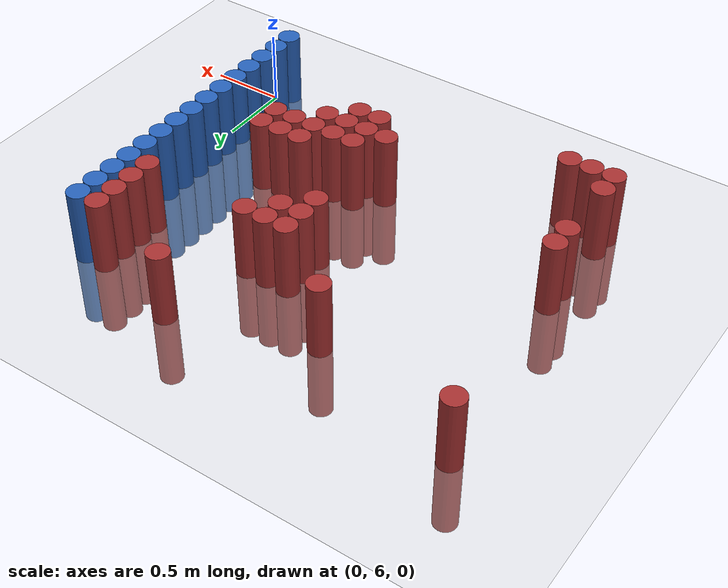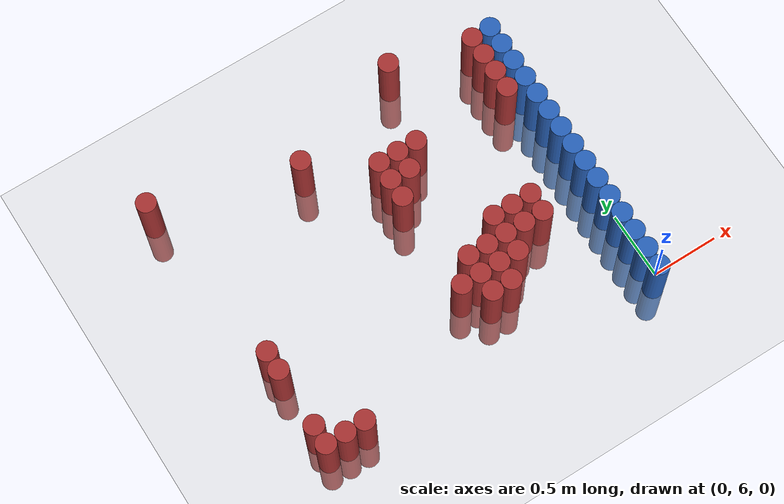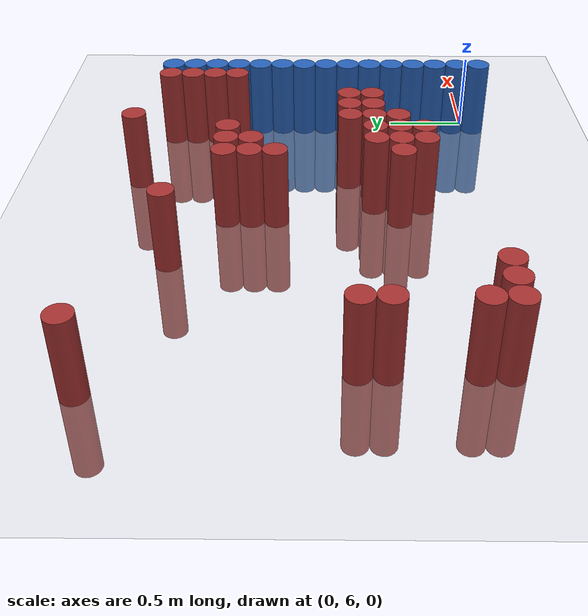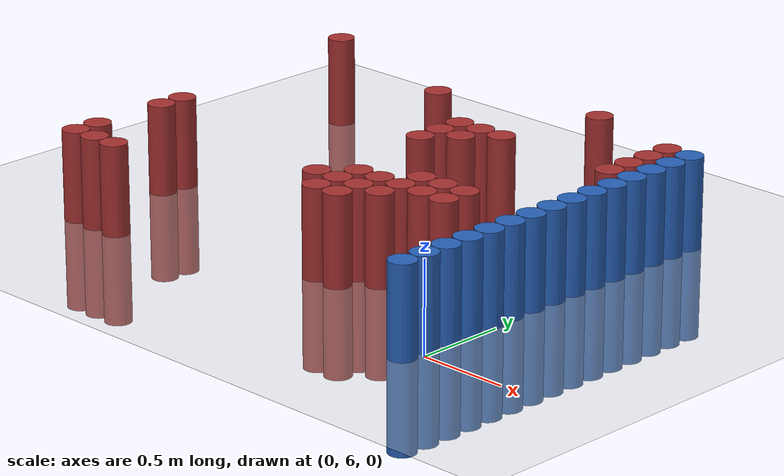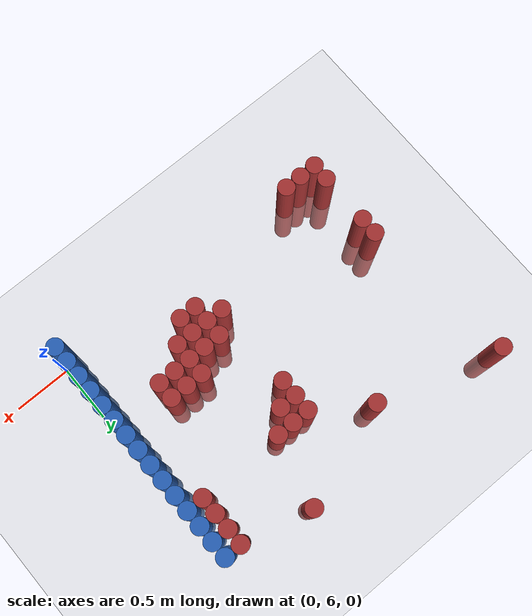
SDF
<sdf version="1.6">
 <world name="default">
  <model name="ground_plane">
   <static>1</static>
   <link name="link">
    <collision name="collision">
     <geometry><plane><normal>0 0 1</normal><size>100 100</size></plane></geometry>
     <surface><friction><ode><mu>100</mu><mu2>50</mu2></ode></friction></surface>
    </collision>
    <visual name="visual">
     <cast_shadows>0</cast_shadows>
     <geometry><plane><normal>0 0 1</normal><size>100 100</size></plane></geometry>
     <material>
      <script><uri>file://media/materials/scripts/gazebo.material</uri><name>Gazebo/Grey</name></script>
     </material>
    </visual>
   </link>
  </model>
  <model name="unit_cylinder_219">
   <static>1</static>
   <pose>-2.775000 8.175000 0.000000 0.000000 0.000000 0.000000</pose>
   <link name="link">
    <inertial>
     <mass>1</mass>
     <inertia><ixx>0.145833</ixx><ixy>0</ixy><ixz>0</ixz><iyy>0.145833</iyy><iyz>0</iyz><izz>0.125</izz></inertia>
    </inertial>
    <collision name="collision">
     <geometry><cylinder><radius>0.075000</radius><length>1</length></cylinder></geometry>
    </collision>
    <visual name="visual">
     <geometry><cylinder><radius>0.075000</radius><length>1</length></cylinder></geometry>
     <material>
      <ambient>0.648000 0.192000 0.192000 1</ambient>
      <diffuse>0.648000 0.192000 0.192000 1</diffuse>
     </material>
     <material>
      <script><name>Gazebo/Grey</name><uri>file://media/materials/scripts/gazebo.material</uri></script>
     </material>
    </visual>
   </link>
  </model>
  <model name="unit_cylinder_225">
   <static>1</static>
   <pose>-2.625000 6.075000 0.000000 0.000000 0.000000 0.000000</pose>
   <link name="link">
    <inertial>
     <mass>1</mass>
     <inertia><ixx>0.145833</ixx><ixy>0</ixy><ixz>0</ixz><iyy>0.145833</iyy><iyz>0</iyz><izz>0.125</izz></inertia>
    </inertial>
    <collision name="collision">
     <geometry><cylinder><radius>0.075000</radius><length>1</length></cylinder></geometry>
    </collision>
    <visual name="visual">
     <geometry><cylinder><radius>0.075000</radius><length>1</length></cylinder></geometry>
     <material>
      <ambient>0.648000 0.192000 0.192000 1</ambient>
      <diffuse>0.648000 0.192000 0.192000 1</diffuse>
     </material>
     <material>
      <script><name>Gazebo/Grey</name><uri>file://media/materials/scripts/gazebo.material</uri></script>
     </material>
    </visual>
   </link>
  </model>
  <model name="unit_cylinder_226">
   <static>1</static>
   <pose>-2.625000 6.225000 0.000000 0.000000 0.000000 0.000000</pose>
   <link name="link">
    <inertial>
     <mass>1</mass>
     <inertia><ixx>0.145833</ixx><ixy>0</ixy><ixz>0</ixz><iyy>0.145833</iyy><iyz>0</iyz><izz>0.125</izz></inertia>
    </inertial>
    <collision name="collision">
     <geometry><cylinder><radius>0.075000</radius><length>1</length></cylinder></geometry>
    </collision>
    <visual name="visual">
     <geometry><cylinder><radius>0.075000</radius><length>1</length></cylinder></geometry>
     <material>
      <ambient>0.648000 0.192000 0.192000 1</ambient>
      <diffuse>0.648000 0.192000 0.192000 1</diffuse>
     </material>
     <material>
      <script><name>Gazebo/Grey</name><uri>file://media/materials/scripts/gazebo.material</uri></script>
     </material>
    </visual>
   </link>
  </model>
  <model name="unit_cylinder_227">
   <static>1</static>
   <pose>-2.625000 6.675000 0.000000 0.000000 0.000000 0.000000</pose>
   <link name="link">
    <inertial>
     <mass>1</mass>
     <inertia><ixx>0.145833</ixx><ixy>0</ixy><ixz>0</ixz><iyy>0.145833</iyy><iyz>0</iyz><izz>0.125</izz></inertia>
    </inertial>
    <collision name="collision">
     <geometry><cylinder><radius>0.075000</radius><length>1</length></cylinder></geometry>
    </collision>
    <visual name="visual">
     <geometry><cylinder><radius>0.075000</radius><length>1</length></cylinder></geometry>
     <material>
      <ambient>0.648000 0.192000 0.192000 1</ambient>
      <diffuse>0.648000 0.192000 0.192000 1</diffuse>
     </material>
     <material>
      <script><name>Gazebo/Grey</name><uri>file://media/materials/scripts/gazebo.material</uri></script>
     </material>
    </visual>
   </link>
  </model>
  <model name="unit_cylinder_228">
   <static>1</static>
   <pose>-2.625000 6.825000 0.000000 0.000000 0.000000 0.000000</pose>
   <link name="link">
    <inertial>
     <mass>1</mass>
     <inertia><ixx>0.145833</ixx><ixy>0</ixy><ixz>0</ixz><iyy>0.145833</iyy><iyz>0</iyz><izz>0.125</izz></inertia>
    </inertial>
    <collision name="collision">
     <geometry><cylinder><radius>0.075000</radius><length>1</length></cylinder></geometry>
    </collision>
    <visual name="visual">
     <geometry><cylinder><radius>0.075000</radius><length>1</length></cylinder></geometry>
     <material>
      <ambient>0.648000 0.192000 0.192000 1</ambient>
      <diffuse>0.648000 0.192000 0.192000 1</diffuse>
     </material>
     <material>
      <script><name>Gazebo/Grey</name><uri>file://media/materials/scripts/gazebo.material</uri></script>
     </material>
    </visual>
   </link>
  </model>
  <model name="unit_cylinder_235">
   <static>1</static>
   <pose>-2.475000 6.075000 0.000000 0.000000 0.000000 0.000000</pose>
   <link name="link">
    <inertial>
     <mass>1</mass>
     <inertia><ixx>0.145833</ixx><ixy>0</ixy><ixz>0</ixz><iyy>0.145833</iyy><iyz>0</iyz><izz>0.125</izz></inertia>
    </inertial>
    <collision name="collision">
     <geometry><cylinder><radius>0.075000</radius><length>1</length></cylinder></geometry>
    </collision>
    <visual name="visual">
     <geometry><cylinder><radius>0.075000</radius><length>1</length></cylinder></geometry>
     <material>
      <ambient>0.648000 0.192000 0.192000 1</ambient>
      <diffuse>0.648000 0.192000 0.192000 1</diffuse>
     </material>
     <material>
      <script><name>Gazebo/Grey</name><uri>file://media/materials/scripts/gazebo.material</uri></script>
     </material>
    </visual>
   </link>
  </model>
  <model name="unit_cylinder_236">
   <static>1</static>
   <pose>-2.325000 6.075000 0.000000 0.000000 0.000000 0.000000</pose>
   <link name="link">
    <inertial>
     <mass>1</mass>
     <inertia><ixx>0.145833</ixx><ixy>0</ixy><ixz>0</ixz><iyy>0.145833</iyy><iyz>0</iyz><izz>0.125</izz></inertia>
    </inertial>
    <collision name="collision">
     <geometry><cylinder><radius>0.075000</radius><length>1</length></cylinder></geometry>
    </collision>
    <visual name="visual">
     <geometry><cylinder><radius>0.075000</radius><length>1</length></cylinder></geometry>
     <material>
      <ambient>0.648000 0.192000 0.192000 1</ambient>
      <diffuse>0.648000 0.192000 0.192000 1</diffuse>
     </material>
     <material>
      <script><name>Gazebo/Grey</name><uri>file://media/materials/scripts/gazebo.material</uri></script>
     </material>
    </visual>
   </link>
  </model>
  <model name="unit_cylinder_248">
   <static>1</static>
   <pose>-1.725000 7.875000 0.000000 0.000000 0.000000 0.000000</pose>
   <link name="link">
    <inertial>
     <mass>1</mass>
     <inertia><ixx>0.145833</ixx><ixy>0</ixy><ixz>0</ixz><iyy>0.145833</iyy><iyz>0</iyz><izz>0.125</izz></inertia>
    </inertial>
    <collision name="collision">
     <geometry><cylinder><radius>0.075000</radius><length>1</length></cylinder></geometry>
    </collision>
    <visual name="visual">
     <geometry><cylinder><radius>0.075000</radius><length>1</length></cylinder></geometry>
     <material>
      <ambient>0.648000 0.192000 0.192000 1</ambient>
      <diffuse>0.648000 0.192000 0.192000 1</diffuse>
     </material>
     <material>
      <script><name>Gazebo/Grey</name><uri>file://media/materials/scripts/gazebo.material</uri></script>
     </material>
    </visual>
   </link>
  </model>
  <model name="unit_cylinder_257">
   <static>1</static>
   <pose>-1.275000 6.525000 0.000000 0.000000 0.000000 0.000000</pose>
   <link name="link">
    <inertial>
     <mass>1</mass>
     <inertia><ixx>0.145833</ixx><ixy>0</ixy><ixz>0</ixz><iyy>0.145833</iyy><iyz>0</iyz><izz>0.125</izz></inertia>
    </inertial>
    <collision name="collision">
     <geometry><cylinder><radius>0.075000</radius><length>1</length></cylinder></geometry>
    </collision>
    <visual name="visual">
     <geometry><cylinder><radius>0.075000</radius><length>1</length></cylinder></geometry>
     <material>
      <ambient>0.648000 0.192000 0.192000 1</ambient>
      <diffuse>0.648000 0.192000 0.192000 1</diffuse>
     </material>
     <material>
      <script><name>Gazebo/Grey</name><uri>file://media/materials/scripts/gazebo.material</uri></script>
     </material>
    </visual>
   </link>
  </model>
  <model name="unit_cylinder_258">
   <static>1</static>
   <pose>-1.275000 7.275000 0.000000 0.000000 0.000000 0.000000</pose>
   <link name="link">
    <inertial>
     <mass>1</mass>
     <inertia><ixx>0.145833</ixx><ixy>0</ixy><ixz>0</ixz><iyy>0.145833</iyy><iyz>0</iyz><izz>0.125</izz></inertia>
    </inertial>
    <collision name="collision">
     <geometry><cylinder><radius>0.075000</radius><length>1</length></cylinder></geometry>
    </collision>
    <visual name="visual">
     <geometry><cylinder><radius>0.075000</radius><length>1</length></cylinder></geometry>
     <material>
      <ambient>0.648000 0.192000 0.192000 1</ambient>
      <diffuse>0.648000 0.192000 0.192000 1</diffuse>
     </material>
     <material>
      <script><name>Gazebo/Grey</name><uri>file://media/materials/scripts/gazebo.material</uri></script>
     </material>
    </visual>
   </link>
  </model>
  <model name="unit_cylinder_259">
   <static>1</static>
   <pose>-1.275000 7.425000 0.000000 0.000000 0.000000 0.000000</pose>
   <link name="link">
    <inertial>
     <mass>1</mass>
     <inertia><ixx>0.145833</ixx><ixy>0</ixy><ixz>0</ixz><iyy>0.145833</iyy><iyz>0</iyz><izz>0.125</izz></inertia>
    </inertial>
    <collision name="collision">
     <geometry><cylinder><radius>0.075000</radius><length>1</length></cylinder></geometry>
    </collision>
    <visual name="visual">
     <geometry><cylinder><radius>0.075000</radius><length>1</length></cylinder></geometry>
     <material>
      <ambient>0.648000 0.192000 0.192000 1</ambient>
      <diffuse>0.648000 0.192000 0.192000 1</diffuse>
     </material>
     <material>
      <script><name>Gazebo/Grey</name><uri>file://media/materials/scripts/gazebo.material</uri></script>
     </material>
    </visual>
   </link>
  </model>
  <model name="unit_cylinder_260">
   <static>1</static>
   <pose>-1.275000 7.575000 0.000000 0.000000 0.000000 0.000000</pose>
   <link name="link">
    <inertial>
     <mass>1</mass>
     <inertia><ixx>0.145833</ixx><ixy>0</ixy><ixz>0</ixz><iyy>0.145833</iyy><iyz>0</iyz><izz>0.125</izz></inertia>
    </inertial>
    <collision name="collision">
     <geometry><cylinder><radius>0.075000</radius><length>1</length></cylinder></geometry>
    </collision>
    <visual name="visual">
     <geometry><cylinder><radius>0.075000</radius><length>1</length></cylinder></geometry>
     <material>
      <ambient>0.648000 0.192000 0.192000 1</ambient>
      <diffuse>0.648000 0.192000 0.192000 1</diffuse>
     </material>
     <material>
      <script><name>Gazebo/Grey</name><uri>file://media/materials/scripts/gazebo.material</uri></script>
     </material>
    </visual>
   </link>
  </model>
  <model name="unit_cylinder_261">
   <static>1</static>
   <pose>-1.125000 6.375000 0.000000 0.000000 0.000000 0.000000</pose>
   <link name="link">
    <inertial>
     <mass>1</mass>
     <inertia><ixx>0.145833</ixx><ixy>0</ixy><ixz>0</ixz><iyy>0.145833</iyy><iyz>0</iyz><izz>0.125</izz></inertia>
    </inertial>
    <collision name="collision">
     <geometry><cylinder><radius>0.075000</radius><length>1</length></cylinder></geometry>
    </collision>
    <visual name="visual">
     <geometry><cylinder><radius>0.075000</radius><length>1</length></cylinder></geometry>
     <material>
      <ambient>0.648000 0.192000 0.192000 1</ambient>
      <diffuse>0.648000 0.192000 0.192000 1</diffuse>
     </material>
     <material>
      <script><name>Gazebo/Grey</name><uri>file://media/materials/scripts/gazebo.material</uri></script>
     </material>
    </visual>
   </link>
  </model>
  <model name="unit_cylinder_262">
   <static>1</static>
   <pose>-1.125000 6.525000 0.000000 0.000000 0.000000 0.000000</pose>
   <link name="link">
    <inertial>
     <mass>1</mass>
     <inertia><ixx>0.145833</ixx><ixy>0</ixy><ixz>0</ixz><iyy>0.145833</iyy><iyz>0</iyz><izz>0.125</izz></inertia>
    </inertial>
    <collision name="collision">
     <geometry><cylinder><radius>0.075000</radius><length>1</length></cylinder></geometry>
    </collision>
    <visual name="visual">
     <geometry><cylinder><radius>0.075000</radius><length>1</length></cylinder></geometry>
     <material>
      <ambient>0.648000 0.192000 0.192000 1</ambient>
      <diffuse>0.648000 0.192000 0.192000 1</diffuse>
     </material>
     <material>
      <script><name>Gazebo/Grey</name><uri>file://media/materials/scripts/gazebo.material</uri></script>
     </material>
    </visual>
   </link>
  </model>
  <model name="unit_cylinder_263">
   <static>1</static>
   <pose>-1.125000 6.675000 0.000000 0.000000 0.000000 0.000000</pose>
   <link name="link">
    <inertial>
     <mass>1</mass>
     <inertia><ixx>0.145833</ixx><ixy>0</ixy><ixz>0</ixz><iyy>0.145833</iyy><iyz>0</iyz><izz>0.125</izz></inertia>
    </inertial>
    <collision name="collision">
     <geometry><cylinder><radius>0.075000</radius><length>1</length></cylinder></geometry>
    </collision>
    <visual name="visual">
     <geometry><cylinder><radius>0.075000</radius><length>1</length></cylinder></geometry>
     <material>
      <ambient>0.648000 0.192000 0.192000 1</ambient>
      <diffuse>0.648000 0.192000 0.192000 1</diffuse>
     </material>
     <material>
      <script><name>Gazebo/Grey</name><uri>file://media/materials/scripts/gazebo.material</uri></script>
     </material>
    </visual>
   </link>
  </model>
  <model name="unit_cylinder_264">
   <static>1</static>
   <pose>-1.125000 7.425000 0.000000 0.000000 0.000000 0.000000</pose>
   <link name="link">
    <inertial>
     <mass>1</mass>
     <inertia><ixx>0.145833</ixx><ixy>0</ixy><ixz>0</ixz><iyy>0.145833</iyy><iyz>0</iyz><izz>0.125</izz></inertia>
    </inertial>
    <collision name="collision">
     <geometry><cylinder><radius>0.075000</radius><length>1</length></cylinder></geometry>
    </collision>
    <visual name="visual">
     <geometry><cylinder><radius>0.075000</radius><length>1</length></cylinder></geometry>
     <material>
      <ambient>0.648000 0.192000 0.192000 1</ambient>
      <diffuse>0.648000 0.192000 0.192000 1</diffuse>
     </material>
     <material>
      <script><name>Gazebo/Grey</name><uri>file://media/materials/scripts/gazebo.material</uri></script>
     </material>
    </visual>
   </link>
  </model>
  <model name="unit_cylinder_265">
   <static>1</static>
   <pose>-1.125000 7.575000 0.000000 0.000000 0.000000 0.000000</pose>
   <link name="link">
    <inertial>
     <mass>1</mass>
     <inertia><ixx>0.145833</ixx><ixy>0</ixy><ixz>0</ixz><iyy>0.145833</iyy><iyz>0</iyz><izz>0.125</izz></inertia>
    </inertial>
    <collision name="collision">
     <geometry><cylinder><radius>0.075000</radius><length>1</length></cylinder></geometry>
    </collision>
    <visual name="visual">
     <geometry><cylinder><radius>0.075000</radius><length>1</length></cylinder></geometry>
     <material>
      <ambient>0.648000 0.192000 0.192000 1</ambient>
      <diffuse>0.648000 0.192000 0.192000 1</diffuse>
     </material>
     <material>
      <script><name>Gazebo/Grey</name><uri>file://media/materials/scripts/gazebo.material</uri></script>
     </material>
    </visual>
   </link>
  </model>
  <model name="unit_cylinder_269">
   <static>1</static>
   <pose>-0.975000 6.375000 0.000000 0.000000 0.000000 0.000000</pose>
   <link name="link">
    <inertial>
     <mass>1</mass>
     <inertia><ixx>0.145833</ixx><ixy>0</ixy><ixz>0</ixz><iyy>0.145833</iyy><iyz>0</iyz><izz>0.125</izz></inertia>
    </inertial>
    <collision name="collision">
     <geometry><cylinder><radius>0.075000</radius><length>1</length></cylinder></geometry>
    </collision>
    <visual name="visual">
     <geometry><cylinder><radius>0.075000</radius><length>1</length></cylinder></geometry>
     <material>
      <ambient>0.648000 0.192000 0.192000 1</ambient>
      <diffuse>0.648000 0.192000 0.192000 1</diffuse>
     </material>
     <material>
      <script><name>Gazebo/Grey</name><uri>file://media/materials/scripts/gazebo.material</uri></script>
     </material>
    </visual>
   </link>
  </model>
  <model name="unit_cylinder_270">
   <static>1</static>
   <pose>-0.975000 6.525000 0.000000 0.000000 0.000000 0.000000</pose>
   <link name="link">
    <inertial>
     <mass>1</mass>
     <inertia><ixx>0.145833</ixx><ixy>0</ixy><ixz>0</ixz><iyy>0.145833</iyy><iyz>0</iyz><izz>0.125</izz></inertia>
    </inertial>
    <collision name="collision">
     <geometry><cylinder><radius>0.075000</radius><length>1</length></cylinder></geometry>
    </collision>
    <visual name="visual">
     <geometry><cylinder><radius>0.075000</radius><length>1</length></cylinder></geometry>
     <material>
      <ambient>0.648000 0.192000 0.192000 1</ambient>
      <diffuse>0.648000 0.192000 0.192000 1</diffuse>
     </material>
     <material>
      <script><name>Gazebo/Grey</name><uri>file://media/materials/scripts/gazebo.material</uri></script>
     </material>
    </visual>
   </link>
  </model>
  <model name="unit_cylinder_271">
   <static>1</static>
   <pose>-0.975000 6.675000 0.000000 0.000000 0.000000 0.000000</pose>
   <link name="link">
    <inertial>
     <mass>1</mass>
     <inertia><ixx>0.145833</ixx><ixy>0</ixy><ixz>0</ixz><iyy>0.145833</iyy><iyz>0</iyz><izz>0.125</izz></inertia>
    </inertial>
    <collision name="collision">
     <geometry><cylinder><radius>0.075000</radius><length>1</length></cylinder></geometry>
    </collision>
    <visual name="visual">
     <geometry><cylinder><radius>0.075000</radius><length>1</length></cylinder></geometry>
     <material>
      <ambient>0.648000 0.192000 0.192000 1</ambient>
      <diffuse>0.648000 0.192000 0.192000 1</diffuse>
     </material>
     <material>
      <script><name>Gazebo/Grey</name><uri>file://media/materials/scripts/gazebo.material</uri></script>
     </material>
    </visual>
   </link>
  </model>
  <model name="unit_cylinder_272">
   <static>1</static>
   <pose>-0.975000 7.575000 0.000000 0.000000 0.000000 0.000000</pose>
   <link name="link">
    <inertial>
     <mass>1</mass>
     <inertia><ixx>0.145833</ixx><ixy>0</ixy><ixz>0</ixz><iyy>0.145833</iyy><iyz>0</iyz><izz>0.125</izz></inertia>
    </inertial>
    <collision name="collision">
     <geometry><cylinder><radius>0.075000</radius><length>1</length></cylinder></geometry>
    </collision>
    <visual name="visual">
     <geometry><cylinder><radius>0.075000</radius><length>1</length></cylinder></geometry>
     <material>
      <ambient>0.648000 0.192000 0.192000 1</ambient>
      <diffuse>0.648000 0.192000 0.192000 1</diffuse>
     </material>
     <material>
      <script><name>Gazebo/Grey</name><uri>file://media/materials/scripts/gazebo.material</uri></script>
     </material>
    </visual>
   </link>
  </model>
  <model name="unit_cylinder_276">
   <static>1</static>
   <pose>-0.825000 6.525000 0.000000 0.000000 0.000000 0.000000</pose>
   <link name="link">
    <inertial>
     <mass>1</mass>
     <inertia><ixx>0.145833</ixx><ixy>0</ixy><ixz>0</ixz><iyy>0.145833</iyy><iyz>0</iyz><izz>0.125</izz></inertia>
    </inertial>
    <collision name="collision">
     <geometry><cylinder><radius>0.075000</radius><length>1</length></cylinder></geometry>
    </collision>
    <visual name="visual">
     <geometry><cylinder><radius>0.075000</radius><length>1</length></cylinder></geometry>
     <material>
      <ambient>0.648000 0.192000 0.192000 1</ambient>
      <diffuse>0.648000 0.192000 0.192000 1</diffuse>
     </material>
     <material>
      <script><name>Gazebo/Grey</name><uri>file://media/materials/scripts/gazebo.material</uri></script>
     </material>
    </visual>
   </link>
  </model>
  <model name="unit_cylinder_277">
   <static>1</static>
   <pose>-0.825000 6.675000 0.000000 0.000000 0.000000 0.000000</pose>
   <link name="link">
    <inertial>
     <mass>1</mass>
     <inertia><ixx>0.145833</ixx><ixy>0</ixy><ixz>0</ixz><iyy>0.145833</iyy><iyz>0</iyz><izz>0.125</izz></inertia>
    </inertial>
    <collision name="collision">
     <geometry><cylinder><radius>0.075000</radius><length>1</length></cylinder></geometry>
    </collision>
    <visual name="visual">
     <geometry><cylinder><radius>0.075000</radius><length>1</length></cylinder></geometry>
     <material>
      <ambient>0.648000 0.192000 0.192000 1</ambient>
      <diffuse>0.648000 0.192000 0.192000 1</diffuse>
     </material>
     <material>
      <script><name>Gazebo/Grey</name><uri>file://media/materials/scripts/gazebo.material</uri></script>
     </material>
    </visual>
   </link>
  </model>
  <model name="unit_cylinder_278">
   <static>1</static>
   <pose>-0.825000 6.825000 0.000000 0.000000 0.000000 0.000000</pose>
   <link name="link">
    <inertial>
     <mass>1</mass>
     <inertia><ixx>0.145833</ixx><ixy>0</ixy><ixz>0</ixz><iyy>0.145833</iyy><iyz>0</iyz><izz>0.125</izz></inertia>
    </inertial>
    <collision name="collision">
     <geometry><cylinder><radius>0.075000</radius><length>1</length></cylinder></geometry>
    </collision>
    <visual name="visual">
     <geometry><cylinder><radius>0.075000</radius><length>1</length></cylinder></geometry>
     <material>
      <ambient>0.648000 0.192000 0.192000 1</ambient>
      <diffuse>0.648000 0.192000 0.192000 1</diffuse>
     </material>
     <material>
      <script><name>Gazebo/Grey</name><uri>file://media/materials/scripts/gazebo.material</uri></script>
     </material>
    </visual>
   </link>
  </model>
  <model name="unit_cylinder_279">
   <static>1</static>
   <pose>-0.825000 8.175000 0.000000 0.000000 0.000000 0.000000</pose>
   <link name="link">
    <inertial>
     <mass>1</mass>
     <inertia><ixx>0.145833</ixx><ixy>0</ixy><ixz>0</ixz><iyy>0.145833</iyy><iyz>0</iyz><izz>0.125</izz></inertia>
    </inertial>
    <collision name="collision">
     <geometry><cylinder><radius>0.075000</radius><length>1</length></cylinder></geometry>
    </collision>
    <visual name="visual">
     <geometry><cylinder><radius>0.075000</radius><length>1</length></cylinder></geometry>
     <material>
      <ambient>0.648000 0.192000 0.192000 1</ambient>
      <diffuse>0.648000 0.192000 0.192000 1</diffuse>
     </material>
     <material>
      <script><name>Gazebo/Grey</name><uri>file://media/materials/scripts/gazebo.material</uri></script>
     </material>
    </visual>
   </link>
  </model>
  <model name="unit_cylinder_283">
   <static>1</static>
   <pose>-0.675000 6.675000 0.000000 0.000000 0.000000 0.000000</pose>
   <link name="link">
    <inertial>
     <mass>1</mass>
     <inertia><ixx>0.145833</ixx><ixy>0</ixy><ixz>0</ixz><iyy>0.145833</iyy><iyz>0</iyz><izz>0.125</izz></inertia>
    </inertial>
    <collision name="collision">
     <geometry><cylinder><radius>0.075000</radius><length>1</length></cylinder></geometry>
    </collision>
    <visual name="visual">
     <geometry><cylinder><radius>0.075000</radius><length>1</length></cylinder></geometry>
     <material>
      <ambient>0.648000 0.192000 0.192000 1</ambient>
      <diffuse>0.648000 0.192000 0.192000 1</diffuse>
     </material>
     <material>
      <script><name>Gazebo/Grey</name><uri>file://media/materials/scripts/gazebo.material</uri></script>
     </material>
    </visual>
   </link>
  </model>
  <model name="unit_cylinder_284">
   <static>1</static>
   <pose>-0.675000 6.825000 0.000000 0.000000 0.000000 0.000000</pose>
   <link name="link">
    <inertial>
     <mass>1</mass>
     <inertia><ixx>0.145833</ixx><ixy>0</ixy><ixz>0</ixz><iyy>0.145833</iyy><iyz>0</iyz><izz>0.125</izz></inertia>
    </inertial>
    <collision name="collision">
     <geometry><cylinder><radius>0.075000</radius><length>1</length></cylinder></geometry>
    </collision>
    <visual name="visual">
     <geometry><cylinder><radius>0.075000</radius><length>1</length></cylinder></geometry>
     <material>
      <ambient>0.648000 0.192000 0.192000 1</ambient>
      <diffuse>0.648000 0.192000 0.192000 1</diffuse>
     </material>
     <material>
      <script><name>Gazebo/Grey</name><uri>file://media/materials/scripts/gazebo.material</uri></script>
     </material>
    </visual>
   </link>
  </model>
  <model name="unit_cylinder_288">
   <static>1</static>
   <pose>-0.525000 6.675000 0.000000 0.000000 0.000000 0.000000</pose>
   <link name="link">
    <inertial>
     <mass>1</mass>
     <inertia><ixx>0.145833</ixx><ixy>0</ixy><ixz>0</ixz><iyy>0.145833</iyy><iyz>0</iyz><izz>0.125</izz></inertia>
    </inertial>
    <collision name="collision">
     <geometry><cylinder><radius>0.075000</radius><length>1</length></cylinder></geometry>
    </collision>
    <visual name="visual">
     <geometry><cylinder><radius>0.075000</radius><length>1</length></cylinder></geometry>
     <material>
      <ambient>0.648000 0.192000 0.192000 1</ambient>
      <diffuse>0.648000 0.192000 0.192000 1</diffuse>
     </material>
     <material>
      <script><name>Gazebo/Grey</name><uri>file://media/materials/scripts/gazebo.material</uri></script>
     </material>
    </visual>
   </link>
  </model>
  <model name="unit_cylinder_289">
   <static>1</static>
   <pose>-0.525000 6.825000 0.000000 0.000000 0.000000 0.000000</pose>
   <link name="link">
    <inertial>
     <mass>1</mass>
     <inertia><ixx>0.145833</ixx><ixy>0</ixy><ixz>0</ixz><iyy>0.145833</iyy><iyz>0</iyz><izz>0.125</izz></inertia>
    </inertial>
    <collision name="collision">
     <geometry><cylinder><radius>0.075000</radius><length>1</length></cylinder></geometry>
    </collision>
    <visual name="visual">
     <geometry><cylinder><radius>0.075000</radius><length>1</length></cylinder></geometry>
     <material>
      <ambient>0.648000 0.192000 0.192000 1</ambient>
      <diffuse>0.648000 0.192000 0.192000 1</diffuse>
     </material>
     <material>
      <script><name>Gazebo/Grey</name><uri>file://media/materials/scripts/gazebo.material</uri></script>
     </material>
    </visual>
   </link>
  </model>
  <model name="unit_cylinder_299">
   <static>1</static>
   <pose>-0.225000 7.575000 0.000000 0.000000 0.000000 0.000000</pose>
   <link name="link">
    <inertial>
     <mass>1</mass>
     <inertia><ixx>0.145833</ixx><ixy>0</ixy><ixz>0</ixz><iyy>0.145833</iyy><iyz>0</iyz><izz>0.125</izz></inertia>
    </inertial>
    <collision name="collision">
     <geometry><cylinder><radius>0.075000</radius><length>1</length></cylinder></geometry>
    </collision>
    <visual name="visual">
     <geometry><cylinder><radius>0.075000</radius><length>1</length></cylinder></geometry>
     <material>
      <ambient>0.648000 0.192000 0.192000 1</ambient>
      <diffuse>0.648000 0.192000 0.192000 1</diffuse>
     </material>
     <material>
      <script><name>Gazebo/Grey</name><uri>file://media/materials/scripts/gazebo.material</uri></script>
     </material>
    </visual>
   </link>
  </model>
  <model name="unit_cylinder_300">
   <static>1</static>
   <pose>-0.225000 7.725000 0.000000 0.000000 0.000000 0.000000</pose>
   <link name="link">
    <inertial>
     <mass>1</mass>
     <inertia><ixx>0.145833</ixx><ixy>0</ixy><ixz>0</ixz><iyy>0.145833</iyy><iyz>0</iyz><izz>0.125</izz></inertia>
    </inertial>
    <collision name="collision">
     <geometry><cylinder><radius>0.075000</radius><length>1</length></cylinder></geometry>
    </collision>
    <visual name="visual">
     <geometry><cylinder><radius>0.075000</radius><length>1</length></cylinder></geometry>
     <material>
      <ambient>0.648000 0.192000 0.192000 1</ambient>
      <diffuse>0.648000 0.192000 0.192000 1</diffuse>
     </material>
     <material>
      <script><name>Gazebo/Grey</name><uri>file://media/materials/scripts/gazebo.material</uri></script>
     </material>
    </visual>
   </link>
  </model>
  <model name="unit_cylinder_301">
   <static>1</static>
   <pose>-0.225000 7.875000 0.000000 0.000000 0.000000 0.000000</pose>
   <link name="link">
    <inertial>
     <mass>1</mass>
     <inertia><ixx>0.145833</ixx><ixy>0</ixy><ixz>0</ixz><iyy>0.145833</iyy><iyz>0</iyz><izz>0.125</izz></inertia>
    </inertial>
    <collision name="collision">
     <geometry><cylinder><radius>0.075000</radius><length>1</length></cylinder></geometry>
    </collision>
    <visual name="visual">
     <geometry><cylinder><radius>0.075000</radius><length>1</length></cylinder></geometry>
     <material>
      <ambient>0.648000 0.192000 0.192000 1</ambient>
      <diffuse>0.648000 0.192000 0.192000 1</diffuse>
     </material>
     <material>
      <script><name>Gazebo/Grey</name><uri>file://media/materials/scripts/gazebo.material</uri></script>
     </material>
    </visual>
   </link>
  </model>
  <model name="unit_cylinder_302">
   <static>1</static>
   <pose>-0.225000 8.025000 0.000000 0.000000 0.000000 0.000000</pose>
   <link name="link">
    <inertial>
     <mass>1</mass>
     <inertia><ixx>0.145833</ixx><ixy>0</ixy><ixz>0</ixz><iyy>0.145833</iyy><iyz>0</iyz><izz>0.125</izz></inertia>
    </inertial>
    <collision name="collision">
     <geometry><cylinder><radius>0.075000</radius><length>1</length></cylinder></geometry>
    </collision>
    <visual name="visual">
     <geometry><cylinder><radius>0.075000</radius><length>1</length></cylinder></geometry>
     <material>
      <ambient>0.648000 0.192000 0.192000 1</ambient>
      <diffuse>0.648000 0.192000 0.192000 1</diffuse>
     </material>
     <material>
      <script><name>Gazebo/Grey</name><uri>file://media/materials/scripts/gazebo.material</uri></script>
     </material>
    </visual>
   </link>
  </model>
  <model name="unit_cylinder_313">
   <static>1</static>
   <pose>-0.075000 5.925000 0.000000 0.000000 0.000000 0.000000</pose>
   <link name="link">
    <inertial>
     <mass>1</mass>
     <inertia><ixx>0.145833</ixx><ixy>0</ixy><ixz>0</ixz><iyy>0.145833</iyy><iyz>0</iyz><izz>0.125</izz></inertia>
    </inertial>
    <collision name="collision">
     <geometry><cylinder><radius>0.075000</radius><length>1</length></cylinder></geometry>
    </collision>
    <visual name="visual">
     <geometry><cylinder><radius>0.075000</radius><length>1</length></cylinder></geometry>
     <material>
      <ambient>0.152000 0.379000 0.720000 1</ambient>
      <diffuse>0.152000 0.379000 0.720000 1</diffuse>
     </material>
     <material>
      <script><name>Gazebo/Grey</name><uri>file://media/materials/scripts/gazebo.material</uri></script>
     </material>
    </visual>
   </link>
  </model>
  <model name="unit_cylinder_314">
   <static>1</static>
   <pose>-0.075000 6.075000 0.000000 0.000000 0.000000 0.000000</pose>
   <link name="link">
    <inertial>
     <mass>1</mass>
     <inertia><ixx>0.145833</ixx><ixy>0</ixy><ixz>0</ixz><iyy>0.145833</iyy><iyz>0</iyz><izz>0.125</izz></inertia>
    </inertial>
    <collision name="collision">
     <geometry><cylinder><radius>0.075000</radius><length>1</length></cylinder></geometry>
    </collision>
    <visual name="visual">
     <geometry><cylinder><radius>0.075000</radius><length>1</length></cylinder></geometry>
     <material>
      <ambient>0.152000 0.379000 0.720000 1</ambient>
      <diffuse>0.152000 0.379000 0.720000 1</diffuse>
     </material>
     <material>
      <script><name>Gazebo/Grey</name><uri>file://media/materials/scripts/gazebo.material</uri></script>
     </material>
    </visual>
   </link>
  </model>
  <model name="unit_cylinder_315">
   <static>1</static>
   <pose>-0.075000 6.225000 0.000000 0.000000 0.000000 0.000000</pose>
   <link name="link">
    <inertial>
     <mass>1</mass>
     <inertia><ixx>0.145833</ixx><ixy>0</ixy><ixz>0</ixz><iyy>0.145833</iyy><iyz>0</iyz><izz>0.125</izz></inertia>
    </inertial>
    <collision name="collision">
     <geometry><cylinder><radius>0.075000</radius><length>1</length></cylinder></geometry>
    </collision>
    <visual name="visual">
     <geometry><cylinder><radius>0.075000</radius><length>1</length></cylinder></geometry>
     <material>
      <ambient>0.152000 0.379000 0.720000 1</ambient>
      <diffuse>0.152000 0.379000 0.720000 1</diffuse>
     </material>
     <material>
      <script><name>Gazebo/Grey</name><uri>file://media/materials/scripts/gazebo.material</uri></script>
     </material>
    </visual>
   </link>
  </model>
  <model name="unit_cylinder_316">
   <static>1</static>
   <pose>-0.075000 6.375000 0.000000 0.000000 0.000000 0.000000</pose>
   <link name="link">
    <inertial>
     <mass>1</mass>
     <inertia><ixx>0.145833</ixx><ixy>0</ixy><ixz>0</ixz><iyy>0.145833</iyy><iyz>0</iyz><izz>0.125</izz></inertia>
    </inertial>
    <collision name="collision">
     <geometry><cylinder><radius>0.075000</radius><length>1</length></cylinder></geometry>
    </collision>
    <visual name="visual">
     <geometry><cylinder><radius>0.075000</radius><length>1</length></cylinder></geometry>
     <material>
      <ambient>0.152000 0.379000 0.720000 1</ambient>
      <diffuse>0.152000 0.379000 0.720000 1</diffuse>
     </material>
     <material>
      <script><name>Gazebo/Grey</name><uri>file://media/materials/scripts/gazebo.material</uri></script>
     </material>
    </visual>
   </link>
  </model>
  <model name="unit_cylinder_317">
   <static>1</static>
   <pose>-0.075000 6.525000 0.000000 0.000000 0.000000 0.000000</pose>
   <link name="link">
    <inertial>
     <mass>1</mass>
     <inertia><ixx>0.145833</ixx><ixy>0</ixy><ixz>0</ixz><iyy>0.145833</iyy><iyz>0</iyz><izz>0.125</izz></inertia>
    </inertial>
    <collision name="collision">
     <geometry><cylinder><radius>0.075000</radius><length>1</length></cylinder></geometry>
    </collision>
    <visual name="visual">
     <geometry><cylinder><radius>0.075000</radius><length>1</length></cylinder></geometry>
     <material>
      <ambient>0.152000 0.379000 0.720000 1</ambient>
      <diffuse>0.152000 0.379000 0.720000 1</diffuse>
     </material>
     <material>
      <script><name>Gazebo/Grey</name><uri>file://media/materials/scripts/gazebo.material</uri></script>
     </material>
    </visual>
   </link>
  </model>
  <model name="unit_cylinder_318">
   <static>1</static>
   <pose>-0.075000 6.675000 0.000000 0.000000 0.000000 0.000000</pose>
   <link name="link">
    <inertial>
     <mass>1</mass>
     <inertia><ixx>0.145833</ixx><ixy>0</ixy><ixz>0</ixz><iyy>0.145833</iyy><iyz>0</iyz><izz>0.125</izz></inertia>
    </inertial>
    <collision name="collision">
     <geometry><cylinder><radius>0.075000</radius><length>1</length></cylinder></geometry>
    </collision>
    <visual name="visual">
     <geometry><cylinder><radius>0.075000</radius><length>1</length></cylinder></geometry>
     <material>
      <ambient>0.152000 0.379000 0.720000 1</ambient>
      <diffuse>0.152000 0.379000 0.720000 1</diffuse>
     </material>
     <material>
      <script><name>Gazebo/Grey</name><uri>file://media/materials/scripts/gazebo.material</uri></script>
     </material>
    </visual>
   </link>
  </model>
  <model name="unit_cylinder_319">
   <static>1</static>
   <pose>-0.075000 6.825000 0.000000 0.000000 0.000000 0.000000</pose>
   <link name="link">
    <inertial>
     <mass>1</mass>
     <inertia><ixx>0.145833</ixx><ixy>0</ixy><ixz>0</ixz><iyy>0.145833</iyy><iyz>0</iyz><izz>0.125</izz></inertia>
    </inertial>
    <collision name="collision">
     <geometry><cylinder><radius>0.075000</radius><length>1</length></cylinder></geometry>
    </collision>
    <visual name="visual">
     <geometry><cylinder><radius>0.075000</radius><length>1</length></cylinder></geometry>
     <material>
      <ambient>0.152000 0.379000 0.720000 1</ambient>
      <diffuse>0.152000 0.379000 0.720000 1</diffuse>
     </material>
     <material>
      <script><name>Gazebo/Grey</name><uri>file://media/materials/scripts/gazebo.material</uri></script>
     </material>
    </visual>
   </link>
  </model>
  <model name="unit_cylinder_320">
   <static>1</static>
   <pose>-0.075000 6.975000 0.000000 0.000000 0.000000 0.000000</pose>
   <link name="link">
    <inertial>
     <mass>1</mass>
     <inertia><ixx>0.145833</ixx><ixy>0</ixy><ixz>0</ixz><iyy>0.145833</iyy><iyz>0</iyz><izz>0.125</izz></inertia>
    </inertial>
    <collision name="collision">
     <geometry><cylinder><radius>0.075000</radius><length>1</length></cylinder></geometry>
    </collision>
    <visual name="visual">
     <geometry><cylinder><radius>0.075000</radius><length>1</length></cylinder></geometry>
     <material>
      <ambient>0.152000 0.379000 0.720000 1</ambient>
      <diffuse>0.152000 0.379000 0.720000 1</diffuse>
     </material>
     <material>
      <script><name>Gazebo/Grey</name><uri>file://media/materials/scripts/gazebo.material</uri></script>
     </material>
    </visual>
   </link>
  </model>
  <model name="unit_cylinder_321">
   <static>1</static>
   <pose>-0.075000 7.125000 0.000000 0.000000 0.000000 0.000000</pose>
   <link name="link">
    <inertial>
     <mass>1</mass>
     <inertia><ixx>0.145833</ixx><ixy>0</ixy><ixz>0</ixz><iyy>0.145833</iyy><iyz>0</iyz><izz>0.125</izz></inertia>
    </inertial>
    <collision name="collision">
     <geometry><cylinder><radius>0.075000</radius><length>1</length></cylinder></geometry>
    </collision>
    <visual name="visual">
     <geometry><cylinder><radius>0.075000</radius><length>1</length></cylinder></geometry>
     <material>
      <ambient>0.152000 0.379000 0.720000 1</ambient>
      <diffuse>0.152000 0.379000 0.720000 1</diffuse>
     </material>
     <material>
      <script><name>Gazebo/Grey</name><uri>file://media/materials/scripts/gazebo.material</uri></script>
     </material>
    </visual>
   </link>
  </model>
  <model name="unit_cylinder_322">
   <static>1</static>
   <pose>-0.075000 7.275000 0.000000 0.000000 0.000000 0.000000</pose>
   <link name="link">
    <inertial>
     <mass>1</mass>
     <inertia><ixx>0.145833</ixx><ixy>0</ixy><ixz>0</ixz><iyy>0.145833</iyy><iyz>0</iyz><izz>0.125</izz></inertia>
    </inertial>
    <collision name="collision">
     <geometry><cylinder><radius>0.075000</radius><length>1</length></cylinder></geometry>
    </collision>
    <visual name="visual">
     <geometry><cylinder><radius>0.075000</radius><length>1</length></cylinder></geometry>
     <material>
      <ambient>0.152000 0.379000 0.720000 1</ambient>
      <diffuse>0.152000 0.379000 0.720000 1</diffuse>
     </material>
     <material>
      <script><name>Gazebo/Grey</name><uri>file://media/materials/scripts/gazebo.material</uri></script>
     </material>
    </visual>
   </link>
  </model>
  <model name="unit_cylinder_323">
   <static>1</static>
   <pose>-0.075000 7.425000 0.000000 0.000000 0.000000 0.000000</pose>
   <link name="link">
    <inertial>
     <mass>1</mass>
     <inertia><ixx>0.145833</ixx><ixy>0</ixy><ixz>0</ixz><iyy>0.145833</iyy><iyz>0</iyz><izz>0.125</izz></inertia>
    </inertial>
    <collision name="collision">
     <geometry><cylinder><radius>0.075000</radius><length>1</length></cylinder></geometry>
    </collision>
    <visual name="visual">
     <geometry><cylinder><radius>0.075000</radius><length>1</length></cylinder></geometry>
     <material>
      <ambient>0.152000 0.379000 0.720000 1</ambient>
      <diffuse>0.152000 0.379000 0.720000 1</diffuse>
     </material>
     <material>
      <script><name>Gazebo/Grey</name><uri>file://media/materials/scripts/gazebo.material</uri></script>
     </material>
    </visual>
   </link>
  </model>
  <model name="unit_cylinder_324">
   <static>1</static>
   <pose>-0.075000 7.575000 0.000000 0.000000 0.000000 0.000000</pose>
   <link name="link">
    <inertial>
     <mass>1</mass>
     <inertia><ixx>0.145833</ixx><ixy>0</ixy><ixz>0</ixz><iyy>0.145833</iyy><iyz>0</iyz><izz>0.125</izz></inertia>
    </inertial>
    <collision name="collision">
     <geometry><cylinder><radius>0.075000</radius><length>1</length></cylinder></geometry>
    </collision>
    <visual name="visual">
     <geometry><cylinder><radius>0.075000</radius><length>1</length></cylinder></geometry>
     <material>
      <ambient>0.152000 0.379000 0.720000 1</ambient>
      <diffuse>0.152000 0.379000 0.720000 1</diffuse>
     </material>
     <material>
      <script><name>Gazebo/Grey</name><uri>file://media/materials/scripts/gazebo.material</uri></script>
     </material>
    </visual>
   </link>
  </model>
  <model name="unit_cylinder_325">
   <static>1</static>
   <pose>-0.075000 7.725000 0.000000 0.000000 0.000000 0.000000</pose>
   <link name="link">
    <inertial>
     <mass>1</mass>
     <inertia><ixx>0.145833</ixx><ixy>0</ixy><ixz>0</ixz><iyy>0.145833</iyy><iyz>0</iyz><izz>0.125</izz></inertia>
    </inertial>
    <collision name="collision">
     <geometry><cylinder><radius>0.075000</radius><length>1</length></cylinder></geometry>
    </collision>
    <visual name="visual">
     <geometry><cylinder><radius>0.075000</radius><length>1</length></cylinder></geometry>
     <material>
      <ambient>0.152000 0.379000 0.720000 1</ambient>
      <diffuse>0.152000 0.379000 0.720000 1</diffuse>
     </material>
     <material>
      <script><name>Gazebo/Grey</name><uri>file://media/materials/scripts/gazebo.material</uri></script>
     </material>
    </visual>
   </link>
  </model>
  <model name="unit_cylinder_326">
   <static>1</static>
   <pose>-0.075000 7.875000 0.000000 0.000000 0.000000 0.000000</pose>
   <link name="link">
    <inertial>
     <mass>1</mass>
     <inertia><ixx>0.145833</ixx><ixy>0</ixy><ixz>0</ixz><iyy>0.145833</iyy><iyz>0</iyz><izz>0.125</izz></inertia>
    </inertial>
    <collision name="collision">
     <geometry><cylinder><radius>0.075000</radius><length>1</length></cylinder></geometry>
    </collision>
    <visual name="visual">
     <geometry><cylinder><radius>0.075000</radius><length>1</length></cylinder></geometry>
     <material>
      <ambient>0.152000 0.379000 0.720000 1</ambient>
      <diffuse>0.152000 0.379000 0.720000 1</diffuse>
     </material>
     <material>
      <script><name>Gazebo/Grey</name><uri>file://media/materials/scripts/gazebo.material</uri></script>
     </material>
    </visual>
   </link>
  </model>
  <model name="unit_cylinder_327">
   <static>1</static>
   <pose>-0.075000 8.025000 0.000000 0.000000 0.000000 0.000000</pose>
   <link name="link">
    <inertial>
     <mass>1</mass>
     <inertia><ixx>0.145833</ixx><ixy>0</ixy><ixz>0</ixz><iyy>0.145833</iyy><iyz>0</iyz><izz>0.125</izz></inertia>
    </inertial>
    <collision name="collision">
     <geometry><cylinder><radius>0.075000</radius><length>1</length></cylinder></geometry>
    </collision>
    <visual name="visual">
     <geometry><cylinder><radius>0.075000</radius><length>1</length></cylinder></geometry>
     <material>
      <ambient>0.152000 0.379000 0.720000 1</ambient>
      <diffuse>0.152000 0.379000 0.720000 1</diffuse>
     </material>
     <material>
      <script><name>Gazebo/Grey</name><uri>file://media/materials/scripts/gazebo.material</uri></script>
     </material>
    </visual>
   </link>
  </model>
 </world>
</sdf>
